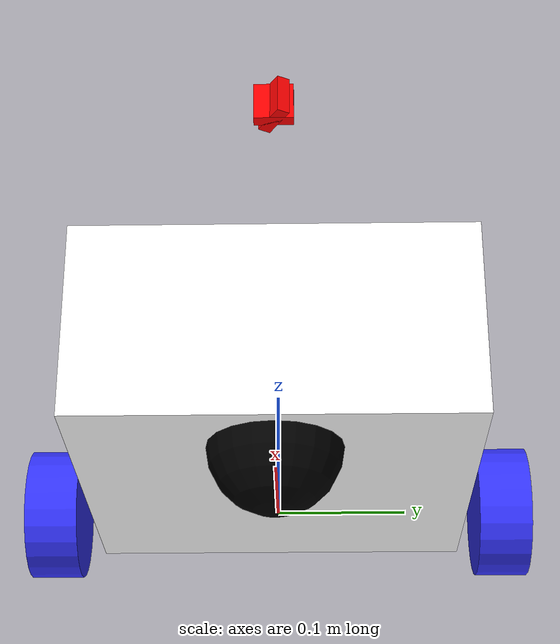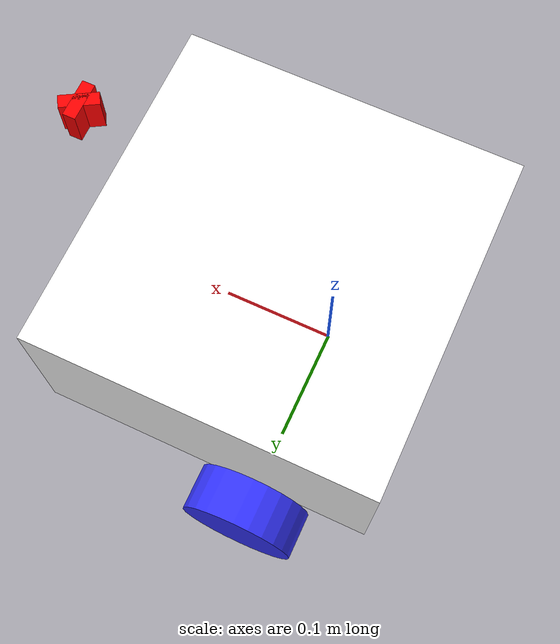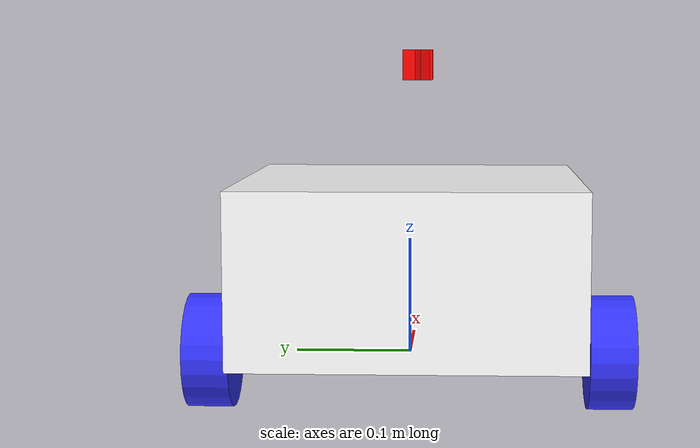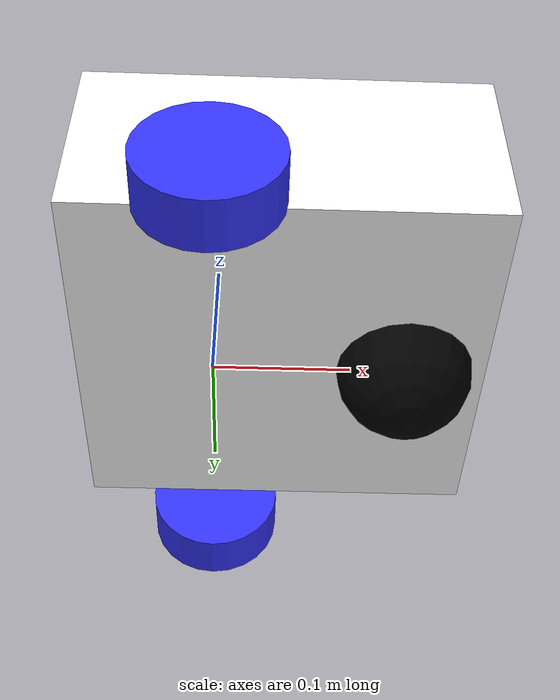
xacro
<?xml version="1.0"?>
<robot xmlns:xacro="http://www.ros.org/wiki/xacro"  name="robot">

    <xacro:include filename="robot_core.xacro" />

    <xacro:include filename="gazebo_control.xacro" />
    <xacro:include filename="camera1.xacro" />
    <xacro:include filename="camera2.xacro" />

</robot>

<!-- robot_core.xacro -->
<robot xmlns:xacro="http://www.ros.org/wiki/xacro"  >

<xacro:include filename="inertial_macros.xacro" />

   <material name="white">
        <color rgba="1 1 1 1"/>
    </material>

    <material name="orange">
        <color rgba="1 0.3 0.1 1"/>
    </material>

    <material name="blue">
        <color rgba="0.2 0.2 1 1"/>
    </material>

    <material name="black">
        <color rgba="0 0 0 1"/>
    </material>

    <material name="red">
        <color rgba="1 0 0 1"/>
    </material>

    <link name="base_link">

    </link>

    <joint name="chassis_joint" type="fixed">
        <parent link="base_link"/>
        <child link="chassis"/>
        <origin xyz="-0.1 0 0"/>
    </joint>

    <link name="chassis">
        <visual>
            <origin xyz="0.15 0 0.075" rpy="0 0 0"/>
            <geometry>
                <box size="0.3 0.3 0.15"/>
            </geometry>
            <material name="white"/>
        </visual>
        <collision>
            <origin xyz="0.15 0 0.075" rpy="0 0 0"/>
            <geometry>
                <box size="0.3 0.3 0.15"/>
            </geometry>
        </collision>
        <xacro:inertial_box mass="0.5" x="0.3" y="0.3" z="0.15">
            <origin xyz="0.15 0 0.075" rpy="0 0 0"/>
        </xacro:inertial_box>
    </link>

    <gazebo reference="chassis">
        <material>Gazebo/White</material>
    </gazebo>

    <!--LEft Wheel -->
    <joint name="left_wheel_joint" type="continuous">
        <parent link="base_link"/>
        <child link="left_wheel"/>
        <origin xyz="0 0.175 0" rpy="-${pi/2} 0 0"/>
        <axis xyz="0 0 1"/>
    </joint>

    <link name="left_wheel">
        <visual>
            <geometry>
                <cylinder length="0.04" radius="0.05" />/>
            </geometry>
            <material name="blue"/>
        </visual>

        <collision>
            <geometry>
                <cylinder length="0.04" radius="0.05" />/>
            </geometry>
        </collision>

        <xacro:inertial_cylinder mass="0.1" length="0.05" radius="0.05">
            <origin xyz="0 0 0" rpy="0 0 0"/>
        </xacro:inertial_cylinder>
    </link>

    <gazebo reference="left_wheel">
        <material>Gazebo/Blue</material>
    </gazebo>

        <!--Right Wheel -->
    <joint name="right_wheel_joint" type="continuous">
        <parent link="base_link"/>
        <child link="right_wheel"/>
        <origin xyz="0 -0.175 0" rpy="${pi/2} 0 0"/>
        <axis xyz="0 0 -1"/>
    </joint>

    <link name="right_wheel">
        <visual>
            <geometry>
                <cylinder length="0.04" radius="0.05" />
            </geometry>
            <material name="blue"/>
        </visual>

        <collision>
            <geometry>
                <cylinder length="0.04" radius="0.05" />
            </geometry>
        </collision>

        <xacro:inertial_sphere mass="0.1" radius="0.05">
            <origin xyz="0 0 0" rpy="0 0 0"/>
        </xacro:inertial_sphere>
    </link>

    <gazebo reference="right_wheel">
        <material>Gazebo/Blue</material>
    </gazebo>

    <!-- CASTER WHEEL -->

    <joint name="caster_wheel_joint" type="fixed">
        <parent link="chassis"/>
        <child link="caster_wheel"/>
        <origin xyz="0.24 0 0" rpy="0 0 0"/>
    </joint>

    <link name="caster_wheel">
        <visual>
            <geometry>
                <sphere radius="0.05" />
            </geometry>
            <material name="black"/>
        </visual>
        <collision>
            <geometry>
                <sphere radius="0.05" />
            </geometry>
        </collision>

        <xacro:inertial_sphere mass="0.1" radius="0.05">
            <origin xyz="0 0 0" rpy="0 0 0"/>
        </xacro:inertial_sphere>
    </link>

    <gazebo reference="caster_wheel">
        <material>Gazebo/Black</material>
        <mu1 value="0.001"/>
        <mu2 value="0.001"/>
    </gazebo>

</robot>

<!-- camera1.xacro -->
<robot xmlns:xacro="http://www.ros.org/wiki/xacro">

    <joint name="camera_1_joint" type="revolute">
        <!-- Parent ve child linkleri belirtin -->
        <parent link="chassis"/>
        <child link="camera_1_link"/>

        <!-- Origin ve axis değerlerini belirtin -->
        <origin xyz="0.305 0 0.25" rpy="0 0 0"/>
        <axis xyz="0 0 1"/>

        <!-- Joint limitlerini belirtin -->
        <limit effort="1000" lower="-3.14" upper="3.14" velocity="1.57"/>
    </joint>

    <gazebo>
        <plugin name="gazebo_ros_joint_state_publisher"
            filename="libgazebo_ros_joint_state_publisher.so">
            <update_rate>20</update_rate>
            <joint_name>camera_1_joint</joint_name>
        </plugin>
    </gazebo>

    <gazebo>
        <plugin name="gazebo_ros_joint_pose_trajectory"
            filename="libgazebo_ros_joint_pose_trajectory.so">
            <update_rate>2</update_rate>
            <joint_name>camera_1_joint</joint_name>
        </plugin>
    </gazebo>

    <link name="camera_1_link">
        <inertial>
            <origin xyz="0 0 0" rpy="0 0 0"/>
            <mass value="1"/>
            <inertia ixx="1" ixy="0" ixz="0" iyy="1" iyz="0" izz="1"/>
        </inertial>
        <visual>
            <geometry>
                <box size="0.010 0.03 0.03"/>
            </geometry>
            <material name="red"/>
        </visual>
    </link>

    <joint name="camera_1_optical_joint" type="fixed">
        <parent link="camera_1_link"/>
        <child link="camera_1_link_optical"/>
        <origin xyz="0 0 0" rpy="${-pi/2} 0 ${-pi/2}"/>
    </joint>

    <link name="camera_1_link_optical"></link>

    <gazebo reference="camera_1_link">
        <material>Gazebo/Red</material>

        <sensor name="camera_1" type="camera">
            <pose> 0 0 0 0 0 0 </pose>
            <visualize>true</visualize>
            <update_rate>10</update_rate>
            <camera>
                <horizontal_fov>1.308</horizontal_fov>
                <vertical_fov>2.094</vertical_fov>
                <image>
                    <format>R8G8B8</format>
                    <width>640</width>
                    <height>480</height>
                </image>
                <clip>
                    <near>0.05</near>
                    <far>8.0</far>
                </clip>
            </camera>
            <plugin name="camera_1_controller" filename="libgazebo_ros_camera.so">
                <frame_name>camera_1_link_optical</frame_name>
            </plugin>
        </sensor>

    </gazebo>

</robot>

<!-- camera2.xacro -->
<robot xmlns:xacro="http://www.ros.org/wiki/xacro" >

    <joint name="camera_2_joint" type="fixed">
        <parent link="chassis"/>
        <child link="camera_2_link"/>
        <origin xyz="0.305  0 0.25" rpy="0 0 ${-pi/3}"/>
    </joint>

    <link name="camera_2_link">
        <visual>
            <geometry>
                <box size="0.010 0.03 0.03"/>
            </geometry>
            <material name="red"/>
        </visual>
    </link>

    <joint name="camera_2_optical_joint" type="fixed">
        <parent link="camera_2_link"/>
        <child link="camera_2_link_optical"/>
        <origin xyz="0 0 0" rpy="${-pi/2} 0 ${-pi/2}"/>
    </joint>

    <link name="camera_2_link_optical"></link>

    <gazebo reference="camera_2_link">
        <material>Gazebo/Red</material>

        <sensor name="camera_2" type="camera">
            <pose> 0 0 0 0 0 0 </pose>
            <visualize>true</visualize>
            <update_rate>10</update_rate>
            <camera>
                <horizontal_fov>1.308</horizontal_fov>
                <vertical_fov>2.094</vertical_fov>
                <image>
                    <format>R8G8B8</format>
                    <width>640</width>
                    <height>480</height>
                </image>
                <clip>
                    <near>0.05</near>
                    <far>8.0</far>
                </clip>
            </camera>
            <plugin name="camera_2_controller" filename="libgazebo_ros_camera.so">
                <frame_name>camera_2_link_optical</frame_name>
            </plugin>
        </sensor>
    </gazebo>

</robot>
